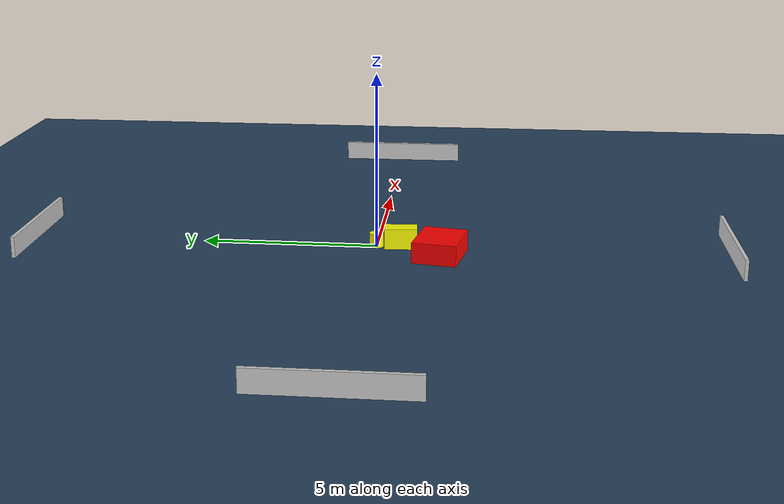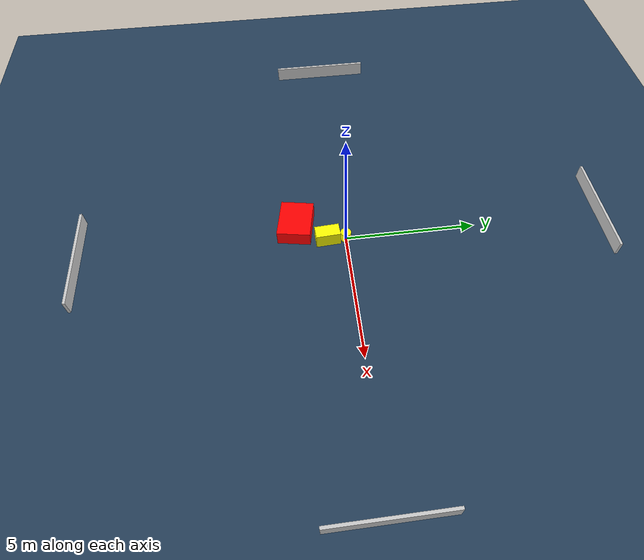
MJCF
<?xml version="1.0" ?>
<mujoco model="generated_environment">
  <option timestep="0.01" integrator="RK4" cone="elliptic"/>
  <default>
    <geom density="1"/>
  </default>
  <asset>
    <texture builtin="gradient" height="3072" name="skybox" rgb1="0.3 0.5 0.7" rgb2="0 0 0" type="skybox" width="512"/>
    <texture builtin="checker" height="300" name="groundplane" rgb1="0.2 0.3 0.4" rgb2="0.1 0.2 0.3" type="2d" width="300"/>
    <material name="groundplane" reflectance="0.2" texrepeat="5 5" texture="groundplane"/>
  </asset>
  <worldbody>
    <light dir="0 0 -1" directional="true" pos="0 0 1.5"/>
    <geom condim="3" friction="0.5 0.005 0.001" material="groundplane" name="floor" pos="0 0 0" size="0 0 0.05" type="plane"/>
    <body name="walls">
      <geom name="wall_1" condim="4" pos="-10.0 0.0 0.3" rgba="0.800000011920929 0.800000011920929 0.800000011920929 1.0" size="0.05 2.0 0.3" type="box"/>
      <geom name="wall_2" condim="4" pos="10.0 0.0 0.3" rgba="0.800000011920929 0.800000011920929 0.800000011920929 1.0" size="0.05 2.0 0.3" type="box"/>
      <geom name="wall_3" condim="4" pos="0.0 -10.0 0.3" rgba="0.800000011920929 0.800000011920929 0.800000011920929 1.0" size="2.0 0.05 0.3" type="box"/>
      <geom name="wall_4" condim="4" pos="0.0 10.0 0.3" rgba="0.800000011920929 0.800000011920929 0.800000011920929 1.0" size="2.0 0.05 0.3" type="box"/>
    </body>
    <body name="robot">
      <joint name="joint_x" type="slide" pos="0 0 0" axis="1 0 0"/>
      <joint name="joint_y" type="slide" pos="0 0 0" axis="0 1 0"/>
      <geom name="robot" type="cylinder" pos="0.0 0.0 0.2" size="0.2 0.2 0.0" mass="5.0" friction="1.0 0.005 0.0001" condim="4" rgba="1.0 1.0 0.0 1.0"/>
    </body>
    <body name="obstacle_1_movable">
      <geom name="obstacle_1_movable" condim="4" pos="-0.007695609633269752 -0.6966602450431046 0.3" euler="0 0 273.37891283616585" friction="0.0 0.005 0.001" rgba="1.0 1.0 0.0 1.0" size="0.46361242002983566 0.25473730228513225 0.3" type="box" mass="0.1"/>
      <joint type="free"/>
    </body>
    <body name="obstacle_2_static">
      <geom name="obstacle_2_static" condim="4" pos="-0.7546835929527516 -1.847645721217397 0.3" euler="0 0 79.47125108352338" friction="0.0 0.005 0.001" rgba="1.0 0.0 0.0 1.0" size="0.62817080701417 0.7771309162972957 0.3" type="box"/>
    </body>
  </worldbody>
  <actuator>
    <motor name="actuator_x" joint="joint_x" gear="1" ctrlrange="-1 1"/>
    <motor name="actuator_y" joint="joint_y" gear="1" ctrlrange="-1 1"/>
  </actuator>
</mujoco>
